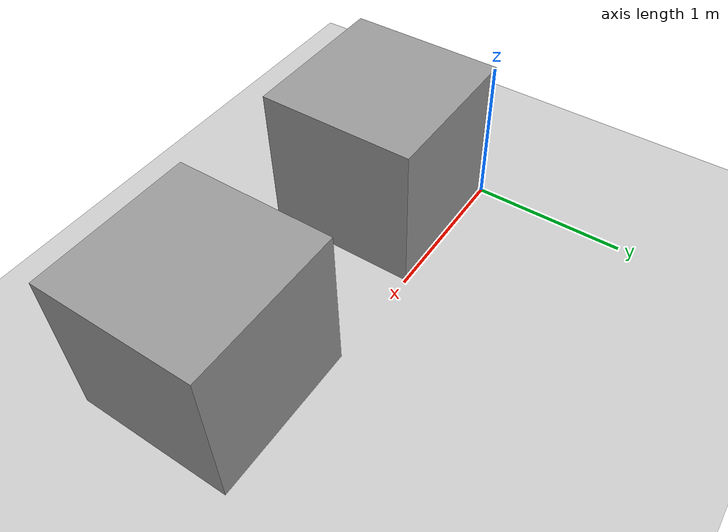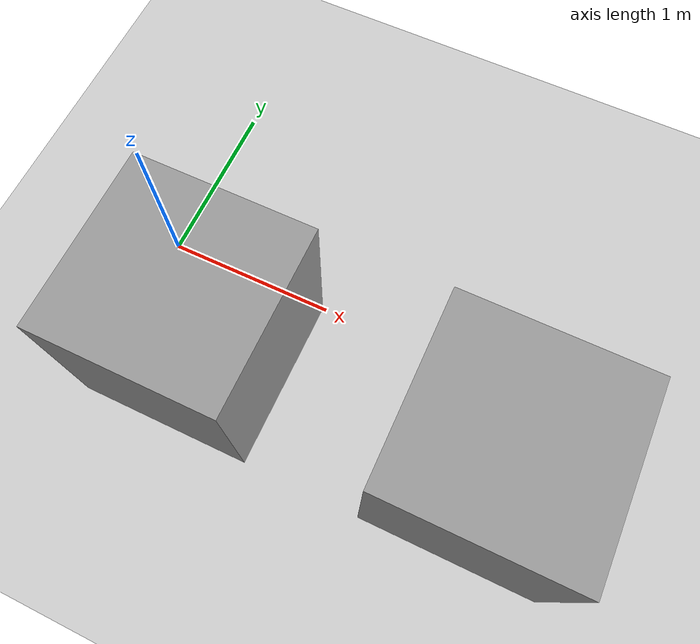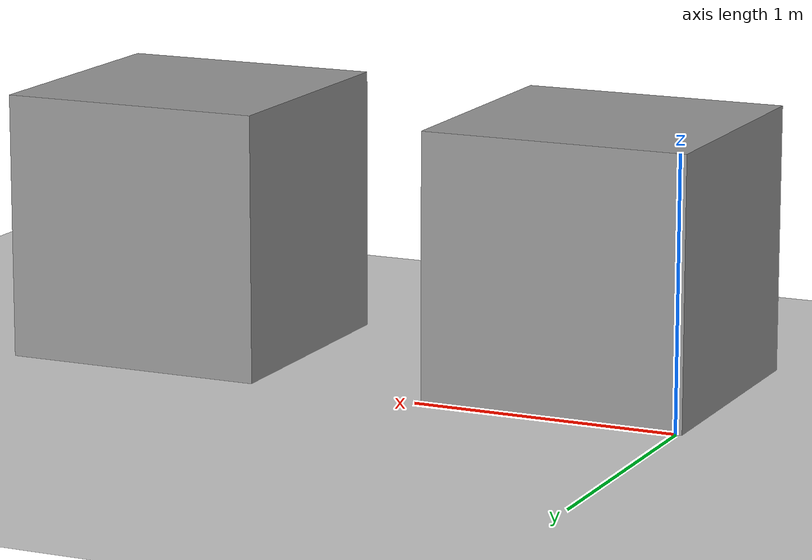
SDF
<sdf version="1.7">
 <world name="default">
  <light name="sun" type="directional">
   <pose>0 0 10 0 -0 0</pose>
   <diffuse>0.8 0.8 0.8 1</diffuse>
   <specular>0.2 0.2 0.2 1</specular>
   <attenuation>
    <range>1000</range>
    <constant>0.9</constant>
    <linear>0.01</linear>
    <quadratic>0.001</quadratic>
   </attenuation>
   <direction>-0.5 0.1 -0.9</direction>
   <spot><inner_angle>0</inner_angle><outer_angle>0</outer_angle><falloff>0</falloff></spot>
  </light>
  <model name="ground_plane">
   <static>1</static>
   <link name="link">
    <collision name="collision">
     <geometry><plane><normal>0 0 1</normal><size>100 100</size></plane></geometry>
     <surface><friction><ode><mu>100</mu><mu2>50</mu2></ode></friction></surface>
    </collision>
    <visual name="visual">
     <cast_shadows>0</cast_shadows>
     <geometry><plane><normal>0 0 1</normal><size>100 100</size></plane></geometry>
     <material>
      <script><uri>file://media/materials/scripts/gazebo.material</uri><name>Gazebo/Grey</name></script>
     </material>
    </visual>
   </link>
  </model>
  <gravity>0 0 -9.8</gravity>
  <magnetic_field>6e-06 2.3e-05 -4.2e-05</magnetic_field>
  <atmosphere type="adiabatic"/>
  <physics type="ode">
   <max_step_size>0.001</max_step_size>
   <real_time_factor>1</real_time_factor>
   <real_time_update_rate>1000</real_time_update_rate>
  </physics>
  <scene><ambient>0.4 0.4 0.4 1</ambient><background>0.7 0.7 0.7 1</background><shadows>1</shadows></scene>
  <audio><device>default</device></audio>
  <spherical_coordinates>
   <surface_model>EARTH_WGS84</surface_model>
   <latitude_deg>0</latitude_deg>
   <longitude_deg>0</longitude_deg>
   <elevation>0</elevation>
   <heading_deg>0</heading_deg>
  </spherical_coordinates>
  <model name="unit_box">
   <pose>0.477815 -0.501267 0.499995 0 1e-05 -2.8e-05</pose>
   <link name="link">
    <inertial>
     <mass>1</mass>
     <inertia>
      <ixx>0.166667</ixx>
      <ixy>0</ixy>
      <ixz>0</ixz>
      <iyy>0.166667</iyy>
      <iyz>0</iyz>
      <izz>0.166667</izz>
     </inertia>
    </inertial>
    <collision name="collision"><geometry><box><size>1 1 1</size></box></geometry></collision>
    <visual name="visual">
     <geometry><box><size>1 1 1</size></box></geometry>
     <material>
      <script><name>Gazebo/Grey</name><uri>file://media/materials/scripts/gazebo.material</uri></script>
     </material>
    </visual>
   </link>
  </model>
  <model name="unit_box_0">
   <pose>2.16043 -0.504239 0.499995 -1e-05 -0 -3.7e-05</pose>
   <link name="link">
    <inertial>
     <mass>1</mass>
     <inertia>
      <ixx>0.166667</ixx>
      <ixy>0</ixy>
      <ixz>0</ixz>
      <iyy>0.166667</iyy>
      <iyz>0</iyz>
      <izz>0.166667</izz>
     </inertia>
    </inertial>
    <collision name="collision"><geometry><box><size>1 1 1</size></box></geometry></collision>
    <visual name="visual">
     <geometry><box><size>1 1 1</size></box></geometry>
     <material>
      <script><name>Gazebo/Grey</name><uri>file://media/materials/scripts/gazebo.material</uri></script>
     </material>
    </visual>
   </link>
  </model>
  <plugin name="gazebo_ros_init" filename="libgazebo_ros_init.so"/>
  <plugin name="gazebo_ros_factory" filename="libgazebo_ros_factory.so"/>
  <plugin name="gazebo_ros_state" filename="libgazebo_ros_state.so"/>
  <plugin name="gazebo_link_attacher" filename="libgazebo_link_attacher.so"/>
 </world>
</sdf>
